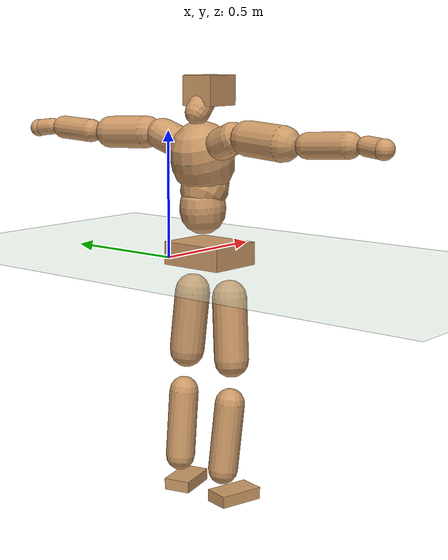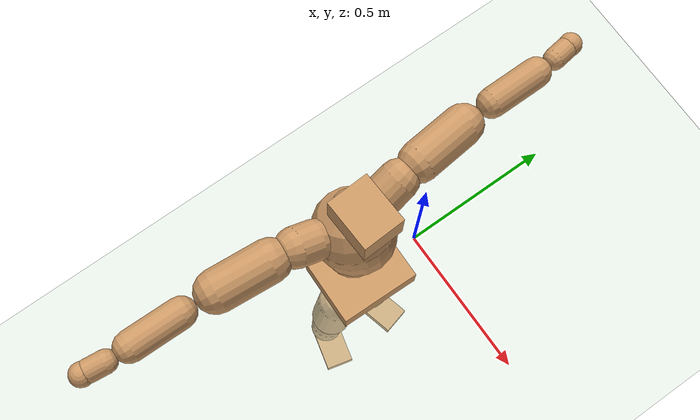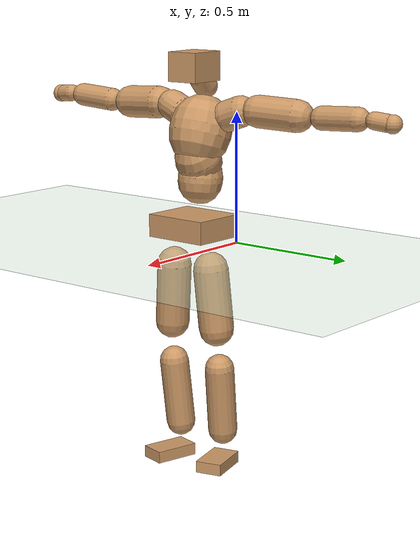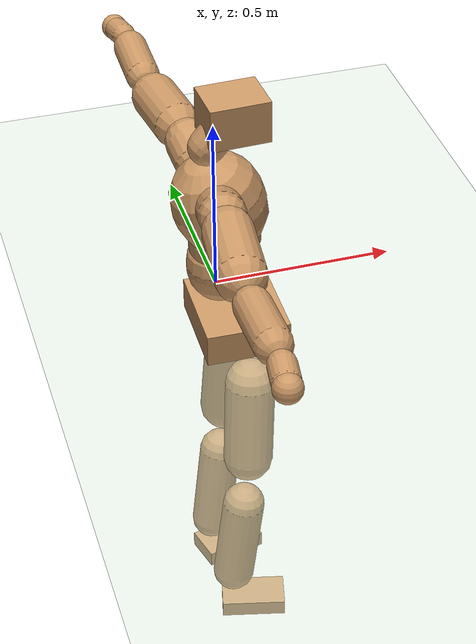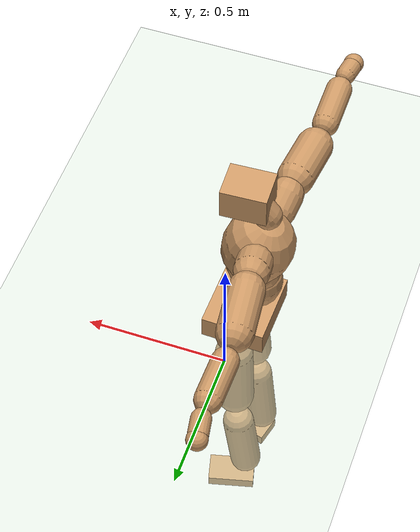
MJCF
<mujoco model="humanoid">
  <compiler coordinate="local" angle="radian"/>
  <default>
    <joint damping="0.0" armature="0.01" stiffness="0.0" limited="true"/>
    <geom conaffinity="1" condim="3" contype="7" margin="0.001" rgba="0.8 0.6 .4 1"/>
  </default>
  <asset>
    <texture type="skybox" builtin="gradient" rgb1=".4 .5 .6" rgb2="0 0 0" width="100" height="100"/>
    <texture builtin="flat" height="1278" mark="cross" markrgb="1 1 1" name="texgeom" random="0.01" rgb1="0.8 0.6 0.4" rgb2="0.8 0.6 0.4" type="cube" width="127"/>
    <texture builtin="checker" height="100" name="texplane" rgb1="0 0 0" rgb2="0.8 0.8 0.8" type="2d" width="100"/>
    <material name="MatPlane" reflectance="0.5" shininess="1" specular="1" texrepeat="60 60" texture="texplane"/>
    <material name="geom" texture="texgeom" texuniform="true"/>
  </asset>
  <worldbody>
    <light cutoff="100" diffuse="1 1 1" dir="-0 0 -1.3" directional="true" exponent="1" pos="0 0 1.3" specular=".1 .1 .1"/>
    <geom conaffinity="1" condim="3" name="floor" pos="0 0 0" rgba="0.8 0.9 0.8 1" size="100 100 .2" type="plane" material="MatPlane"/>
    <body name="Pelvis" pos="0.0022 -0.2114 0.0558">
      <freejoint name="Pelvis"/>
      <geom type="box" contype="1" conaffinity="1" density="500" pos="-0.0039 0.0001 -0.0135" size="0.1116 0.1323 0.0443" quat="0.9999 0.0000 0.0000 -0.0107" name="Pelvis"/>
      <body name="L_Hip" pos="0.0076 0.0856 -0.0955">
        <joint name="L_Hip_x" type="hinge" pos="0 0 0" axis="1 0 0" stiffness="800" damping="80" armature="0.02" range="-180.0000 180.0000"/>
        <joint name="L_Hip_y" type="hinge" pos="0 0 0" axis="0 1 0" stiffness="800" damping="80" armature="0.02" range="-180.0000 180.0000"/>
        <joint name="L_Hip_z" type="hinge" pos="0 0 0" axis="0 0 1" stiffness="800" damping="80" armature="0.02" range="-180.0000 180.0000"/>
        <geom type="capsule" contype="1" conaffinity="1" density="500" fromto="-0.0045 0.0058 -0.0794 -0.0180 0.0232 -0.3177" size="0.0684" name="L_Hip"/>
        <body name="L_Knee" pos="-0.0225 0.029 -0.3971">
          <joint name="L_Knee_x" type="hinge" pos="0 0 0" axis="1 0 0" stiffness="800" damping="80" armature="0.02" range="-180.0000 180.0000"/>
          <joint name="L_Knee_y" type="hinge" pos="0 0 0" axis="0 1 0" stiffness="800" damping="80" armature="0.02" range="-180.0000 180.0000"/>
          <joint name="L_Knee_z" type="hinge" pos="0 0 0" axis="0 0 1" stiffness="800" damping="80" armature="0.02" range="-180.0000 180.0000"/>
          <geom type="capsule" contype="1" conaffinity="1" density="500" fromto="-0.0101 -0.0023 -0.0871 -0.0405 -0.0092 -0.3484" size="0.0578" name="L_Knee"/>
          <body name="L_Ankle" pos="-0.0507 -0.0115 -0.4355">
            <joint name="L_Ankle_x" type="hinge" pos="0 0 0" axis="1 0 0" stiffness="800" damping="80" armature="0.02" range="-180.0000 180.0000"/>
            <joint name="L_Ankle_y" type="hinge" pos="0 0 0" axis="0 1 0" stiffness="800" damping="80" armature="0.02" range="-180.0000 180.0000"/>
            <joint name="L_Ankle_z" type="hinge" pos="0 0 0" axis="0 0 1" stiffness="800" damping="80" armature="0.02" range="-180.0000 180.0000"/>
            <geom type="box" contype="1" conaffinity="1" density="500" pos="0.0613 0.0156 -0.0320" size="0.0873 0.0528 0.0228" quat="0.9922 0.0000 0.0000 0.1245" name="L_Ankle"/>
            <body name="L_Toe" pos="0.1227 0.0313 -0.0639">
              <joint name="L_Toe_x" type="hinge" pos="0 0 0" axis="1 0 0" stiffness="500" damping="50" armature="0.02" range="-180.0000 180.0000"/>
              <joint name="L_Toe_y" type="hinge" pos="0 0 0" axis="0 1 0" stiffness="500" damping="50" armature="0.02" range="-180.0000 180.0000"/>
              <joint name="L_Toe_z" type="hinge" pos="0 0 0" axis="0 0 1" stiffness="500" damping="50" armature="0.02" range="-180.0000 180.0000"/>
              <geom type="box" contype="1" conaffinity="1" density="500" pos="0.0000 0.0000 0.0315" size="0.0011 0.0026 0.0011" quat="0.9915 0.0000 0.0000 0.1301" name="L_Toe"/>
            </body>
          </body>
        </body>
      </body>
      <body name="R_Hip" pos="0.0113 -0.0832 -0.0966">
        <joint name="R_Hip_x" type="hinge" pos="0 0 0" axis="1 0 0" stiffness="800" damping="80" armature="0.02" range="-180.0000 180.0000"/>
        <joint name="R_Hip_y" type="hinge" pos="0 0 0" axis="0 1 0" stiffness="800" damping="80" armature="0.02" range="-180.0000 180.0000"/>
        <joint name="R_Hip_z" type="hinge" pos="0 0 0" axis="0 0 1" stiffness="800" damping="80" armature="0.02" range="-180.0000 180.0000"/>
        <geom type="capsule" contype="1" conaffinity="1" density="500" fromto="-0.0045 -0.0077 -0.0803 -0.0179 -0.0307 -0.3213" size="0.0675" name="R_Hip"/>
        <body name="R_Knee" pos="-0.0224 -0.0384 -0.4017">
          <joint name="R_Knee_x" type="hinge" pos="0 0 0" axis="1 0 0" stiffness="800" damping="80" armature="0.02" range="-180.0000 180.0000"/>
          <joint name="R_Knee_y" type="hinge" pos="0 0 0" axis="0 1 0" stiffness="800" damping="80" armature="0.02" range="-180.0000 180.0000"/>
          <joint name="R_Knee_z" type="hinge" pos="0 0 0" axis="0 0 1" stiffness="800" damping="80" armature="0.02" range="-180.0000 180.0000"/>
          <geom type="capsule" contype="1" conaffinity="1" density="500" fromto="-0.0099 0.0028 -0.0879 -0.0395 0.0112 -0.3516" size="0.0579" name="R_Knee"/>
          <body name="R_Ankle" pos="-0.0494 0.014 -0.4396">
            <joint name="R_Ankle_x" type="hinge" pos="0 0 0" axis="1 0 0" stiffness="800" damping="80" armature="0.02" range="-180.0000 180.0000"/>
            <joint name="R_Ankle_y" type="hinge" pos="0 0 0" axis="0 1 0" stiffness="800" damping="80" armature="0.02" range="-180.0000 180.0000"/>
            <joint name="R_Ankle_z" type="hinge" pos="0 0 0" axis="0 0 1" stiffness="800" damping="80" armature="0.02" range="-180.0000 180.0000"/>
            <geom type="box" contype="1" conaffinity="1" density="500" pos="0.0640 -0.0157 -0.0271" size="0.0897 0.0511 0.0234" quat="0.9928 0.0000 0.0000 -0.1199" name="R_Ankle"/>
            <body name="R_Toe" pos="0.128 -0.0314 -0.0541">
              <joint name="R_Toe_x" type="hinge" pos="0 0 0" axis="1 0 0" stiffness="500" damping="50" armature="0.02" range="-180.0000 180.0000"/>
              <joint name="R_Toe_y" type="hinge" pos="0 0 0" axis="0 1 0" stiffness="500" damping="50" armature="0.02" range="-180.0000 180.0000"/>
              <joint name="R_Toe_z" type="hinge" pos="0 0 0" axis="0 0 1" stiffness="500" damping="50" armature="0.02" range="-180.0000 180.0000"/>
              <geom type="box" contype="1" conaffinity="1" density="500" pos="0.0000 0.0000 0.0286" size="0.0011 0.0026 0.0012" quat="0.9938 0.0000 0.0000 -0.1109" name="R_Toe"/>
            </body>
          </body>
        </body>
      </body>
      <body name="Torso" pos="-0.0423 -0.0019 0.1113">
        <joint name="Torso_x" type="hinge" pos="0 0 0" axis="1 0 0" stiffness="1000" damping="100" armature="0.02" range="-180.0000 180.0000"/>
        <joint name="Torso_y" type="hinge" pos="0 0 0" axis="0 1 0" stiffness="1000" damping="100" armature="0.02" range="-180.0000 180.0000"/>
        <joint name="Torso_z" type="hinge" pos="0 0 0" axis="0 0 1" stiffness="1000" damping="100" armature="0.02" range="-180.0000 180.0000"/>
        <geom type="capsule" contype="1" conaffinity="1" density="500" fromto="-0.0044 0.0010 0.0632 -0.0029 0.0007 0.0422" size="0.0882" name="Torso"/>
        <body name="Spine" pos="-0.0073 0.0016 0.1054">
          <joint name="Spine_x" type="hinge" pos="0 0 0" axis="1 0 0" stiffness="1000" damping="100" armature="0.02" range="-180.0000 180.0000"/>
          <joint name="Spine_y" type="hinge" pos="0 0 0" axis="0 1 0" stiffness="1000" damping="100" armature="0.02" range="-180.0000 180.0000"/>
          <joint name="Spine_z" type="hinge" pos="0 0 0" axis="0 0 1" stiffness="1000" damping="100" armature="0.02" range="-180.0000 180.0000"/>
          <geom type="capsule" contype="1" conaffinity="1" density="500" fromto="0.0195 0.0009 0.0302 0.0130 0.0006 0.0201" size="0.0919" name="Spine"/>
          <body name="Chest" pos="0.0326 0.0014 0.0503">
            <joint name="Chest_x" type="hinge" pos="0 0 0" axis="1 0 0" stiffness="1000" damping="100" armature="0.02" range="-180.0000 180.0000"/>
            <joint name="Chest_y" type="hinge" pos="0 0 0" axis="0 1 0" stiffness="1000" damping="100" armature="0.02" range="-180.0000 180.0000"/>
            <joint name="Chest_z" type="hinge" pos="0 0 0" axis="0 0 1" stiffness="1000" damping="100" armature="0.02" range="-180.0000 180.0000"/>
            <geom type="capsule" contype="1" conaffinity="1" density="500" fromto="-0.0352 -0.0005 0.1043 -0.0234 -0.0003 0.0695" size="0.1211" name="Chest"/>
            <body name="Neck" pos="-0.0699 -0.0005 0.2436">
              <joint name="Neck_x" type="hinge" pos="0 0 0" axis="1 0 0" stiffness="500" damping="50" armature="0.02" range="-180.0000 180.0000"/>
              <joint name="Neck_y" type="hinge" pos="0 0 0" axis="0 1 0" stiffness="500" damping="50" armature="0.02" range="-180.0000 180.0000"/>
              <joint name="Neck_z" type="hinge" pos="0 0 0" axis="0 0 1" stiffness="500" damping="50" armature="0.02" range="-180.0000 180.0000"/>
              <geom type="capsule" contype="1" conaffinity="1" density="500" fromto="0.0106 0.0001 0.0120 0.0423 0.0004 0.0481" size="0.0471" name="Neck"/>
              <body name="Head" pos="0.0529 0.0005 0.0602">
                <joint name="Head_x" type="hinge" pos="0 0 0" axis="1 0 0" stiffness="500" damping="50" armature="0.02" range="-180.0000 180.0000"/>
                <joint name="Head_y" type="hinge" pos="0 0 0" axis="0 1 0" stiffness="500" damping="50" armature="0.02" range="-180.0000 180.0000"/>
                <joint name="Head_z" type="hinge" pos="0 0 0" axis="0 0 1" stiffness="500" damping="50" armature="0.02" range="-180.0000 180.0000"/>
                <geom type="box" contype="1" conaffinity="1" density="500" pos="0.0274 0.0012 0.0311" size="0.0782 0.0641 0.0564" quat="0.9997 0.0000 0.0000 0.0227" name="Head"/>
              </body>
            </body>
            <body name="L_Thorax" pos="-0.0503 0.0929 0.1399">
              <joint name="L_Thorax_x" type="hinge" pos="0 0 0" axis="1 0 0" stiffness="500" damping="50" armature="0.02" range="-180.0000 180.0000"/>
              <joint name="L_Thorax_y" type="hinge" pos="0 0 0" axis="0 1 0" stiffness="500" damping="50" armature="0.02" range="-180.0000 180.0000"/>
              <joint name="L_Thorax_z" type="hinge" pos="0 0 0" axis="0 0 1" stiffness="500" damping="50" armature="0.02" range="-180.0000 180.0000"/>
              <geom type="capsule" contype="1" conaffinity="1" density="500" fromto="-0.0026 0.0197 0.0072 -0.0105 0.0788 0.0289" size="0.0612" name="L_Thorax"/>
              <body name="L_Shoulder" pos="-0.0131 0.0985 0.0361">
                <joint name="L_Shoulder_x" type="hinge" pos="0 0 0" axis="1 0 0" stiffness="500" damping="50" armature="0.02" range="-720.0000 720.0000"/>
                <joint name="L_Shoulder_y" type="hinge" pos="0 0 0" axis="0 1 0" stiffness="500" damping="50" armature="0.02" range="-720.0000 720.0000"/>
                <joint name="L_Shoulder_z" type="hinge" pos="0 0 0" axis="0 0 1" stiffness="500" damping="50" armature="0.02" range="-720.0000 720.0000"/>
                <geom type="capsule" contype="1" conaffinity="1" density="500" fromto="-0.0061 0.0560 -0.0021 -0.0246 0.2239 -0.0084" size="0.0623" name="L_Shoulder"/>
                <body name="L_Elbow" pos="-0.0307 0.2799 -0.0105">
                  <joint name="L_Elbow_x" type="hinge" pos="0 0 0" axis="1 0 0" stiffness="500" damping="50" armature="0.02" range="-720.0000 720.0000"/>
                  <joint name="L_Elbow_y" type="hinge" pos="0 0 0" axis="0 1 0" stiffness="500" damping="50" armature="0.02" range="-720.0000 720.0000"/>
                  <joint name="L_Elbow_z" type="hinge" pos="0 0 0" axis="0 0 1" stiffness="500" damping="50" armature="0.02" range="-720.0000 720.0000"/>
                  <geom type="capsule" contype="1" conaffinity="1" density="500" fromto="0.0004 0.0518 0.0025 0.0015 0.2071 0.0100" size="0.0456" name="L_Elbow"/>
                  <body name="L_Wrist" pos="0.0019 0.2588 0.0125">
                    <joint name="L_Wrist_x" type="hinge" pos="0 0 0" axis="1 0 0" stiffness="300" damping="30" armature="0.02" range="-180.0000 180.0000"/>
                    <joint name="L_Wrist_y" type="hinge" pos="0 0 0" axis="0 1 0" stiffness="300" damping="30" armature="0.02" range="-180.0000 180.0000"/>
                    <joint name="L_Wrist_z" type="hinge" pos="0 0 0" axis="0 0 1" stiffness="300" damping="30" armature="0.02" range="-180.0000 180.0000"/>
                    <geom type="capsule" contype="1" conaffinity="1" density="500" fromto="-0.0028 0.0174 -0.0021 -0.0113 0.0694 -0.0082" size="0.0332" name="L_Wrist"/>
                    <body name="L_Hand" pos="-0.0141 0.0868 -0.0103">
                      <joint name="L_Hand_x" type="hinge" pos="0 0 0" axis="1 0 0" stiffness="300" damping="30" armature="0.02" range="-180.0000 180.0000"/>
                      <joint name="L_Hand_y" type="hinge" pos="0 0 0" axis="0 1 0" stiffness="300" damping="30" armature="0.02" range="-180.0000 180.0000"/>
                      <joint name="L_Hand_z" type="hinge" pos="0 0 0" axis="0 0 1" stiffness="300" damping="30" armature="0.02" range="-180.0000 180.0000"/>
                      <geom type="sphere" contype="1" conaffinity="1" density="500" size="0.0350" pos="0.0000 0.0000 0.0000" name="L_Hand"/>
                    </body>
                  </body>
                </body>
              </body>
            </body>
            <body name="R_Thorax" pos="-0.0556 -0.0948 0.1379">
              <joint name="R_Thorax_x" type="hinge" pos="0 0 0" axis="1 0 0" stiffness="500" damping="50" armature="0.02" range="-180.0000 180.0000"/>
              <joint name="R_Thorax_y" type="hinge" pos="0 0 0" axis="0 1 0" stiffness="500" damping="50" armature="0.02" range="-180.0000 180.0000"/>
              <joint name="R_Thorax_z" type="hinge" pos="0 0 0" axis="0 0 1" stiffness="500" damping="50" armature="0.02" range="-180.0000 180.0000"/>
              <geom type="capsule" contype="1" conaffinity="1" density="500" fromto="-0.0029 -0.0202 0.0078 -0.0117 -0.0806 0.0312" size="0.0604" name="R_Thorax"/>
              <body name="R_Shoulder" pos="-0.0146 -0.1008 0.039">
                <joint name="R_Shoulder_x" type="hinge" pos="0 0 0" axis="1 0 0" stiffness="500" damping="50" armature="0.02" range="-720.0000 720.0000"/>
                <joint name="R_Shoulder_y" type="hinge" pos="0 0 0" axis="0 1 0" stiffness="500" damping="50" armature="0.02" range="-720.0000 720.0000"/>
                <joint name="R_Shoulder_z" type="hinge" pos="0 0 0" axis="0 0 1" stiffness="500" damping="50" armature="0.02" range="-720.0000 720.0000"/>
                <geom type="capsule" contype="1" conaffinity="1" density="500" fromto="-0.0053 -0.0554 -0.0034 -0.0214 -0.2216 -0.0138" size="0.0644" name="R_Shoulder"/>
                <body name="R_Elbow" pos="-0.0267 -0.277 -0.0172">
                  <joint name="R_Elbow_x" type="hinge" pos="0 0 0" axis="1 0 0" stiffness="500" damping="50" armature="0.02" range="-720.0000 720.0000"/>
                  <joint name="R_Elbow_y" type="hinge" pos="0 0 0" axis="0 1 0" stiffness="500" damping="50" armature="0.02" range="-720.0000 720.0000"/>
                  <joint name="R_Elbow_z" type="hinge" pos="0 0 0" axis="0 0 1" stiffness="500" damping="50" armature="0.02" range="-720.0000 720.0000"/>
                  <geom type="capsule" contype="1" conaffinity="1" density="500" fromto="0.0000 -0.0539 0.0032 0.0000 -0.2156 0.0130" size="0.0465" name="R_Elbow"/>
                  <body name="R_Wrist" pos="0 -0.2695 0.0162">
                    <joint name="R_Wrist_x" type="hinge" pos="0 0 0" axis="1 0 0" stiffness="300" damping="30" armature="0.02" range="-180.0000 180.0000"/>
                    <joint name="R_Wrist_y" type="hinge" pos="0 0 0" axis="0 1 0" stiffness="300" damping="30" armature="0.02" range="-180.0000 180.0000"/>
                    <joint name="R_Wrist_z" type="hinge" pos="0 0 0" axis="0 0 1" stiffness="300" damping="30" armature="0.02" range="-180.0000 180.0000"/>
                    <geom type="capsule" contype="1" conaffinity="1" density="500" fromto="-0.0023 -0.0179 -0.0016 -0.0094 -0.0715 -0.0065" size="0.0346" name="R_Wrist"/>
                    <body name="R_Hand" pos="-0.0117 -0.0894 -0.0081">
                      <joint name="R_Hand_x" type="hinge" pos="0 0 0" axis="1 0 0" stiffness="300" damping="30" armature="0.02" range="-180.0000 180.0000"/>
                      <joint name="R_Hand_y" type="hinge" pos="0 0 0" axis="0 1 0" stiffness="300" damping="30" armature="0.02" range="-180.0000 180.0000"/>
                      <joint name="R_Hand_z" type="hinge" pos="0 0 0" axis="0 0 1" stiffness="300" damping="30" armature="0.02" range="-180.0000 180.0000"/>
                      <geom type="sphere" contype="1" conaffinity="1" density="500" size="0.0360" pos="0.0000 0.0000 0.0000" name="R_Hand"/>
                    </body>
                  </body>
                </body>
              </body>
            </body>
          </body>
        </body>
      </body>
    </body>
  </worldbody>
  <actuator>
    <motor name="L_Hip_x" joint="L_Hip_x" gear="500"/>
    <motor name="L_Hip_y" joint="L_Hip_y" gear="500"/>
    <motor name="L_Hip_z" joint="L_Hip_z" gear="500"/>
    <motor name="L_Knee_x" joint="L_Knee_x" gear="500"/>
    <motor name="L_Knee_y" joint="L_Knee_y" gear="500"/>
    <motor name="L_Knee_z" joint="L_Knee_z" gear="500"/>
    <motor name="L_Ankle_x" joint="L_Ankle_x" gear="500"/>
    <motor name="L_Ankle_y" joint="L_Ankle_y" gear="500"/>
    <motor name="L_Ankle_z" joint="L_Ankle_z" gear="500"/>
    <motor name="L_Toe_x" joint="L_Toe_x" gear="500"/>
    <motor name="L_Toe_y" joint="L_Toe_y" gear="500"/>
    <motor name="L_Toe_z" joint="L_Toe_z" gear="500"/>
    <motor name="R_Hip_x" joint="R_Hip_x" gear="500"/>
    <motor name="R_Hip_y" joint="R_Hip_y" gear="500"/>
    <motor name="R_Hip_z" joint="R_Hip_z" gear="500"/>
    <motor name="R_Knee_x" joint="R_Knee_x" gear="500"/>
    <motor name="R_Knee_y" joint="R_Knee_y" gear="500"/>
    <motor name="R_Knee_z" joint="R_Knee_z" gear="500"/>
    <motor name="R_Ankle_x" joint="R_Ankle_x" gear="500"/>
    <motor name="R_Ankle_y" joint="R_Ankle_y" gear="500"/>
    <motor name="R_Ankle_z" joint="R_Ankle_z" gear="500"/>
    <motor name="R_Toe_x" joint="R_Toe_x" gear="500"/>
    <motor name="R_Toe_y" joint="R_Toe_y" gear="500"/>
    <motor name="R_Toe_z" joint="R_Toe_z" gear="500"/>
    <motor name="Torso_x" joint="Torso_x" gear="500"/>
    <motor name="Torso_y" joint="Torso_y" gear="500"/>
    <motor name="Torso_z" joint="Torso_z" gear="500"/>
    <motor name="Spine_x" joint="Spine_x" gear="500"/>
    <motor name="Spine_y" joint="Spine_y" gear="500"/>
    <motor name="Spine_z" joint="Spine_z" gear="500"/>
    <motor name="Chest_x" joint="Chest_x" gear="500"/>
    <motor name="Chest_y" joint="Chest_y" gear="500"/>
    <motor name="Chest_z" joint="Chest_z" gear="500"/>
    <motor name="Neck_x" joint="Neck_x" gear="500"/>
    <motor name="Neck_y" joint="Neck_y" gear="500"/>
    <motor name="Neck_z" joint="Neck_z" gear="500"/>
    <motor name="Head_x" joint="Head_x" gear="500"/>
    <motor name="Head_y" joint="Head_y" gear="500"/>
    <motor name="Head_z" joint="Head_z" gear="500"/>
    <motor name="L_Thorax_x" joint="L_Thorax_x" gear="500"/>
    <motor name="L_Thorax_y" joint="L_Thorax_y" gear="500"/>
    <motor name="L_Thorax_z" joint="L_Thorax_z" gear="500"/>
    <motor name="L_Shoulder_x" joint="L_Shoulder_x" gear="500"/>
    <motor name="L_Shoulder_y" joint="L_Shoulder_y" gear="500"/>
    <motor name="L_Shoulder_z" joint="L_Shoulder_z" gear="500"/>
    <motor name="L_Elbow_x" joint="L_Elbow_x" gear="500"/>
    <motor name="L_Elbow_y" joint="L_Elbow_y" gear="500"/>
    <motor name="L_Elbow_z" joint="L_Elbow_z" gear="500"/>
    <motor name="L_Wrist_x" joint="L_Wrist_x" gear="500"/>
    <motor name="L_Wrist_y" joint="L_Wrist_y" gear="500"/>
    <motor name="L_Wrist_z" joint="L_Wrist_z" gear="500"/>
    <motor name="L_Hand_x" joint="L_Hand_x" gear="500"/>
    <motor name="L_Hand_y" joint="L_Hand_y" gear="500"/>
    <motor name="L_Hand_z" joint="L_Hand_z" gear="500"/>
    <motor name="R_Thorax_x" joint="R_Thorax_x" gear="500"/>
    <motor name="R_Thorax_y" joint="R_Thorax_y" gear="500"/>
    <motor name="R_Thorax_z" joint="R_Thorax_z" gear="500"/>
    <motor name="R_Shoulder_x" joint="R_Shoulder_x" gear="500"/>
    <motor name="R_Shoulder_y" joint="R_Shoulder_y" gear="500"/>
    <motor name="R_Shoulder_z" joint="R_Shoulder_z" gear="500"/>
    <motor name="R_Elbow_x" joint="R_Elbow_x" gear="500"/>
    <motor name="R_Elbow_y" joint="R_Elbow_y" gear="500"/>
    <motor name="R_Elbow_z" joint="R_Elbow_z" gear="500"/>
    <motor name="R_Wrist_x" joint="R_Wrist_x" gear="500"/>
    <motor name="R_Wrist_y" joint="R_Wrist_y" gear="500"/>
    <motor name="R_Wrist_z" joint="R_Wrist_z" gear="500"/>
    <motor name="R_Hand_x" joint="R_Hand_x" gear="500"/>
    <motor name="R_Hand_y" joint="R_Hand_y" gear="500"/>
    <motor name="R_Hand_z" joint="R_Hand_z" gear="500"/>
  </actuator>
  <contact>
    <exclude body1="Torso" body2="Chest"/>
    <exclude body1="Head" body2="Chest"/>
    <exclude body1="R_Knee" body2="R_Toe"/>
    <exclude body1="R_Knee" body2="L_Ankle"/>
    <exclude body1="R_Knee" body2="L_Toe"/>
    <exclude body1="L_Knee" body2="L_Toe"/>
    <exclude body1="L_Knee" body2="R_Ankle"/>
    <exclude body1="L_Knee" body2="R_Toe"/>
    <exclude body1="L_Shoulder" body2="Chest"/>
    <exclude body1="R_Shoulder" body2="Chest"/>
  </contact>
  <sensor/>
  <size njmax="700" nconmax="700"/>
</mujoco>
